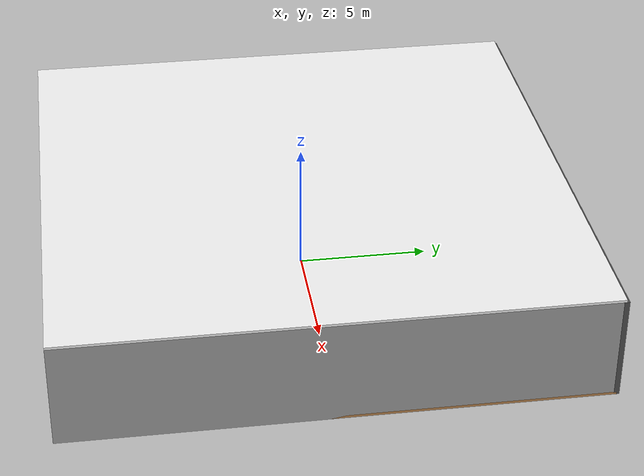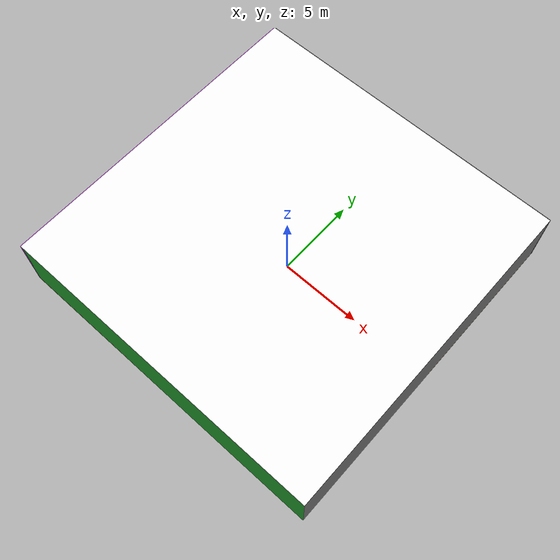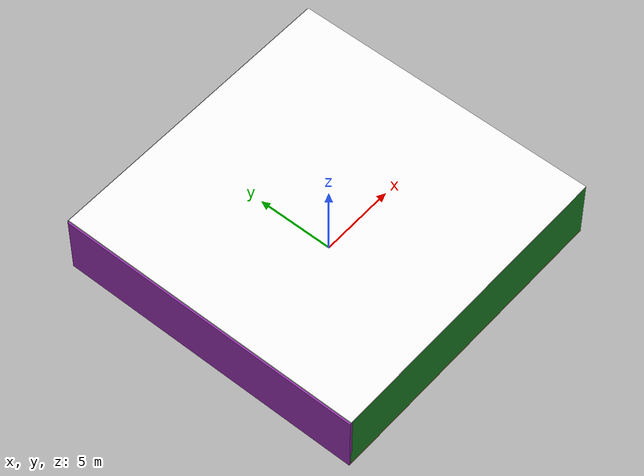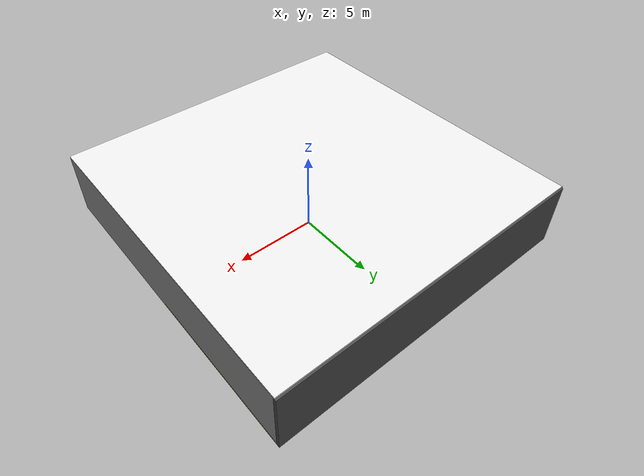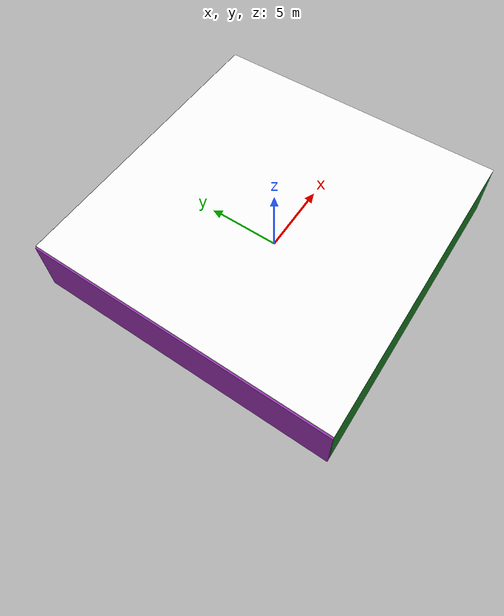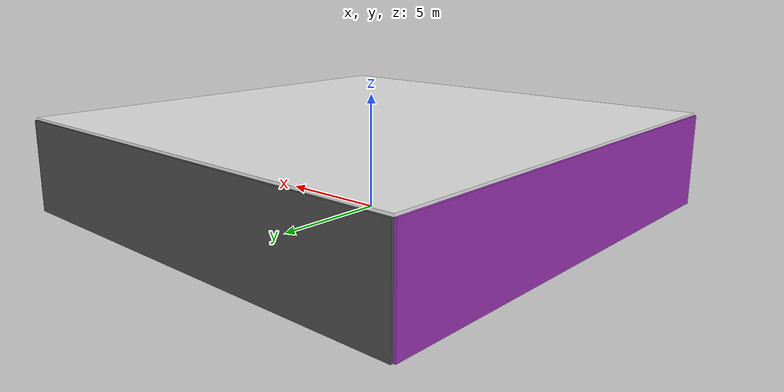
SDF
<sdf version="1.4">
 <world name="default">
  <physics type="ode">
   <max_step_size>0.001</max_step_size>
   <real_time_factor>1</real_time_factor>
   <real_time_update_rate>1000</real_time_update_rate>
   <gravity>0 0 -9.8</gravity>
  </physics>
  <scene><ambient>0.4 0.4 0.4 1</ambient><background>0.7 0.7 0.7 1</background><shadows>1</shadows></scene>
  <model name="Surrounding">
   <static>1</static>
   <link name="Ceiling">
    <collision name="Ceiling_Collision"><geometry><box><size>20 20 0.1</size></box></geometry></collision>
    <visual name="Ceiling_Visual">
     <geometry><box><size>20 20 0.1</size></box></geometry>
     <material>
      <script><uri>file://media/materials/scripts/gazebo.material</uri><name>Gazebo/WhiteGlow</name></script>
     </material>
    </visual>
    <pose>0 0 4.05 0 0 0</pose>
   </link>
   <link name="Wall_South">
    <collision name="Wall_South_Collision">
     <geometry><box><size>20 0 4</size></box></geometry>
     <pose>0 0 2 0 -0 0</pose>
    </collision>
    <visual name="Wall_South_Visual">
     <pose>0 0 2 0 -0 0</pose>
     <geometry><box><size>20 0 4</size></box></geometry>
     <material>
      <script><uri>file://media/materials/scripts/gazebo.material</uri><name>Gazebo/Green</name></script>
     </material>
    </visual>
    <velocity_decay><linear>0</linear><angular>0</angular></velocity_decay>
    <pose>0 -10 0 0 -0 0</pose>
   </link>
   <link name="Wall_East">
    <collision name="Wall_21_Collision">
     <geometry><box><size>20 0 4</size></box></geometry>
     <pose>0 0 2 0 -0 0</pose>
    </collision>
    <visual name="Wall_21_Visual">
     <pose>0 0 2 0 -0 0</pose>
     <geometry><box><size>20 0 4</size></box></geometry>
     <material>
      <script><uri>file://media/materials/scripts/gazebo.material</uri><name>Gazebo/Grey</name></script>
     </material>
    </visual>
    <velocity_decay><linear>0</linear><angular>0</angular></velocity_decay>
    <pose>10 0 0 0 -0 1.5708</pose>
   </link>
   <link name="Wall_North">
    <collision name="Wall_22_Collision">
     <geometry><box><size>20 0.2 4</size></box></geometry>
     <pose>0 0 2 0 -0 0</pose>
    </collision>
    <visual name="Wall_22_Visual">
     <pose>0 0 2 0 -0 0</pose>
     <geometry><box><size>20 0.2 4</size></box></geometry>
     <material>
      <script><uri>file://media/materials/scripts/gazebo.material</uri><name>Gazebo/Road</name></script>
     </material>
    </visual>
    <velocity_decay><linear>0</linear><angular>0</angular></velocity_decay>
    <pose>0 10 0 0 -0 0</pose>
   </link>
   <link name="Wall_West">
    <collision name="Wall_23_Collision">
     <geometry><box><size>20 0.2 4</size></box></geometry>
     <pose>0 0 2 0 -0 0</pose>
    </collision>
    <visual name="Wall_23_Visual">
     <pose>0 0 2 0 -0 0</pose>
     <geometry><box><size>20 0.2 4</size></box></geometry>
     <material>
      <script><uri>file://media/materials/scripts/gazebo.material</uri><name>Gazebo/Purple</name></script>
     </material>
    </visual>
    <velocity_decay><linear>0</linear><angular>0</angular></velocity_decay>
    <pose>-10 0 0 0 0 -1.5708</pose>
   </link>
   <link name="Ground_link">
    <collision name="collision">
     <pose>0 0 .05 0 -0 0</pose>
     <geometry><box><size>20 20 0.1</size></box></geometry>
    </collision>
    <visual name="visual">
     <pose>0 0 .05 0 -0 0</pose>
     <geometry><box><size>20 20 0.1</size></box></geometry>
     <material>
      <script><uri>file://media/materials/scripts/gazebo.material</uri><name>Gazebo/WoodFloor</name></script>
     </material>
    </visual>
   </link>
   <static>1</static>
  </model>
  <spherical_coordinates>
   <surface_model>EARTH_WGS84</surface_model>
   <latitude_deg>0</latitude_deg>
   <longitude_deg>0</longitude_deg>
   <elevation>0</elevation>
   <heading_deg>0</heading_deg>
  </spherical_coordinates>
  <light name="lightball_0" type="diffuse">
   <diffuse>0.8 0.8 0.8 1</diffuse>
   <specular>0.2 0.2 0.2 1</specular>
   <attenuation>
    <range>100</range>
    <constant>0.7</constant>
    <linear>0.01</linear>
    <quadratic>0.001</quadratic>
   </attenuation>
   <direction>-0.5 0.1 -0.9</direction>
   <pose>7.65090774384 5.15673388444 3.70046115072 0 0 0</pose>
  </light>
  <light name="lightball_1" type="diffuse">
   <diffuse>0.8 0.8 0.8 1</diffuse>
   <specular>0.2 0.2 0.2 1</specular>
   <attenuation>
    <range>100</range>
    <constant>0.7</constant>
    <linear>0.01</linear>
    <quadratic>0.001</quadratic>
   </attenuation>
   <direction>-0.5 0.1 -0.9</direction>
   <pose>2.05469376421 7.53429152741 1.55379212466 0 0 0</pose>
  </light>
  <light name="lightball_2" type="diffuse">
   <diffuse>0.8 0.8 0.8 1</diffuse>
   <specular>0.2 0.2 0.2 1</specular>
   <attenuation>
    <range>100</range>
    <constant>0.7</constant>
    <linear>0.01</linear>
    <quadratic>0.001</quadratic>
   </attenuation>
   <direction>-0.5 0.1 -0.9</direction>
   <pose>-3.17145572283 6.3059932466 1.0814548421 0 0 0</pose>
  </light>
  <light name="lightball_3" type="diffuse">
   <diffuse>0.8 0.8 0.8 1</diffuse>
   <specular>0.2 0.2 0.2 1</specular>
   <attenuation>
    <range>100</range>
    <constant>0.7</constant>
    <linear>0.01</linear>
    <quadratic>0.001</quadratic>
   </attenuation>
   <direction>-0.5 0.1 -0.9</direction>
   <pose>7.11480004225 -0.188105261289 1.56949951482 0 0 0</pose>
  </light>
  <light name="lightball_4" type="diffuse">
   <diffuse>0.8 0.8 0.8 1</diffuse>
   <specular>0.2 0.2 0.2 1</specular>
   <attenuation>
    <range>100</range>
    <constant>0.7</constant>
    <linear>0.01</linear>
    <quadratic>0.001</quadratic>
   </attenuation>
   <direction>-0.5 0.1 -0.9</direction>
   <pose>-9.49330414762 -9.53645781257 0.890553973627 0 0 0</pose>
  </light>
  <light name="lightball_5" type="diffuse">
   <diffuse>0.8 0.8 0.8 1</diffuse>
   <specular>0.2 0.2 0.2 1</specular>
   <attenuation>
    <range>100</range>
    <constant>0.7</constant>
    <linear>0.01</linear>
    <quadratic>0.001</quadratic>
   </attenuation>
   <direction>-0.5 0.1 -0.9</direction>
   <pose>-3.1057223715 2.7127856604 2.47879527944 0 0 0</pose>
  </light>
  <light name="lightball_6" type="diffuse">
   <diffuse>0.8 0.8 0.8 1</diffuse>
   <specular>0.2 0.2 0.2 1</specular>
   <attenuation>
    <range>100</range>
    <constant>0.7</constant>
    <linear>0.01</linear>
    <quadratic>0.001</quadratic>
   </attenuation>
   <direction>-0.5 0.1 -0.9</direction>
   <pose>-8.09509569498 2.25387463293 3.28459417012 0 0 0</pose>
  </light>
  <light name="lightball_7" type="diffuse">
   <diffuse>0.8 0.8 0.8 1</diffuse>
   <specular>0.2 0.2 0.2 1</specular>
   <attenuation>
    <range>100</range>
    <constant>0.7</constant>
    <linear>0.01</linear>
    <quadratic>0.001</quadratic>
   </attenuation>
   <direction>-0.5 0.1 -0.9</direction>
   <pose>4.24622809766 -4.41962617229 3.36990143722 0 0 0</pose>
  </light>
  <light name="lightball_8" type="diffuse">
   <diffuse>0.8 0.8 0.8 1</diffuse>
   <specular>0.2 0.2 0.2 1</specular>
   <attenuation>
    <range>100</range>
    <constant>0.7</constant>
    <linear>0.01</linear>
    <quadratic>0.001</quadratic>
   </attenuation>
   <direction>-0.5 0.1 -0.9</direction>
   <pose>-7.35244020795 -0.581653257146 2.46255747147 0 0 0</pose>
  </light>
  <light name="lightball_9" type="diffuse">
   <diffuse>0.8 0.8 0.8 1</diffuse>
   <specular>0.2 0.2 0.2 1</specular>
   <attenuation>
    <range>100</range>
    <constant>0.7</constant>
    <linear>0.01</linear>
    <quadratic>0.001</quadratic>
   </attenuation>
   <direction>-0.5 0.1 -0.9</direction>
   <pose>-6.48812322747 -8.25878451768 2.76478471091 0 0 0</pose>
  </light>
  <include>
   <uri>model://robocup_3Dsim_goal</uri>
   <pose>-4.15024834446 -7.85015084612 0 0 0 0.143376042458</pose>
  </include>
  <include>
   <uri>model://robocup_3Dsim_goal</uri>
   <pose>-1.43925281921 -4.345111981 0 0 0 0.802561251159</pose>
  </include>
  <include>
   <uri>model://textured_shapes</uri>
   <pose>6.84618332276 1.79526150496 0 0 0 0.549028422592</pose>
  </include>
 </world>
</sdf>

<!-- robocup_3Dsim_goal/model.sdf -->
<sdf version="1.5">
  <model name="robocup_3d_goal">
    <static>true</static>
    <link name="left_post">
      <pose>0 1.05 0.45 0 0 0</pose>
      <collision name="collision">
        <geometry>
          <cylinder>
            <radius>0.05</radius>
            <length>0.9</length>
          </cylinder>
        </geometry>
      </collision>
      <visual name="visual">
        <geometry>
          <cylinder>
            <radius>0.05</radius>
            <length>0.9</length>
          </cylinder>
        </geometry>
        <material>
          <script>
            <uri>file://media/materials/scripts/gazebo.material</uri>
            <name>Gazebo/ZincYellow</name>
          </script>
        </material>
      </visual>
    </link>
    <link name="left_support_horiz_lower">
      <pose>0.30 1.05 0.01 0 0 0</pose>
      <collision name="collision">
        <geometry>
          <box>
            <size>0.50 0.02 0.02</size>
          </box>
        </geometry>
      </collision>
      <visual name="visual">
        <geometry>
          <box>
            <size>0.50 0.02 0.02</size>
          </box>
        </geometry>
        <material>
          <script>
            <uri>file://media/materials/scripts/gazebo.material</uri>
            <name>Gazebo/White</name>
          </script>
        </material>
      </visual>
    </link>
    <link name="left_support_horiz_upper">
      <pose>0.30 1.05 0.79 0 0 0</pose>
      <collision name="collision">
        <geometry>
          <box>
            <size>0.50 0.02 0.02</size>
          </box>
        </geometry>
      </collision>
      <visual name="visual">
        <geometry>
          <box>
            <size>0.50 0.02 0.02</size>
          </box>
        </geometry>
        <material>
          <script>
            <uri>file://media/materials/scripts/gazebo.material</uri>
            <name>Gazebo/White</name>
          </script>
        </material>
      </visual>
    </link>
    <link name="left_support_vertical">
      <pose>0.56 1.05 0.4 0 1.5708 0</pose>
      <collision name="collision">
        <geometry>
          <box>
            <size>0.80 0.02 0.02</size>
          </box>
        </geometry>
      </collision>
      <visual name="visual">
        <geometry>
          <box>
            <size>0.80 0.02 0.02</size>
          </box>
        </geometry>
        <material>
          <script>
            <uri>file://media/materials/scripts/gazebo.material</uri>
            <name>Gazebo/White</name>
          </script>
        </material>
      </visual>
    </link>
    <link name="right_support_horiz_lower">
      <pose>0.30 -1.05 0.01 0 0 0</pose>
      <collision name="collision">
        <geometry>
          <box>
            <size>0.50 0.02 0.02</size>
          </box>
        </geometry>
      </collision>
      <visual name="visual">
        <geometry>
          <box>
            <size>0.50 0.02 0.02</size>
          </box>
        </geometry>
        <material>
          <script>
            <uri>file://media/materials/scripts/gazebo.material</uri>
            <name>Gazebo/White</name>
          </script>
        </material>
      </visual>
    </link>
    <link name="right_support_horiz_upper">
      <pose>0.30 -1.05 0.79 0 0 0</pose>
      <collision name="collision">
        <geometry>
          <box>
            <size>0.50 0.02 0.02</size>
          </box>
        </geometry>
      </collision>
      <visual name="visual">
        <geometry>
          <box>
            <size>0.50 0.02 0.02</size>
          </box>
        </geometry>
        <material>
          <script>
            <uri>file://media/materials/scripts/gazebo.material</uri>
            <name>Gazebo/White</name>
          </script>
        </material>
      </visual>
    </link>
    <link name="right_support_vertical">
      <pose>0.56 -1.05 0.4 0 1.5708 0</pose>
      <collision name="collision">
        <geometry>
          <box>
            <size>0.80 0.02 0.02</size>
          </box>
        </geometry>
      </collision>
      <visual name="visual">
        <geometry>
          <box>
            <size>0.80 0.02 0.02</size>
          </box>
        </geometry>
        <material>
          <script>
            <uri>file://media/materials/scripts/gazebo.material</uri>
            <name>Gazebo/White</name>
          </script>
        </material>
      </visual>
    </link>
    <link name="center_support_horiz_lower">
      <pose>0.56 0 0.01 0 1.5708 0</pose>
      <collision name="collision">
        <geometry>
          <box>
            <size>0.02 2.08 0.02</size>
          </box>
        </geometry>
      </collision>
      <visual name="visual">
        <geometry>
          <box>
            <size>0.02 2.08 0.02</size>
          </box>
        </geometry>
        <material>
          <script>
            <uri>file://media/materials/scripts/gazebo.material</uri>
            <name>Gazebo/White</name>
          </script>
        </material>
      </visual>
    </link>
    <link name="center_support_horiz_upper">
      <pose>0.56 0 0.79 0 1.5708 0</pose>
      <collision name="collision">
        <geometry>
          <box>
            <size>0.02 2.08 0.02</size>
          </box>
        </geometry>
      </collision>
      <visual name="visual">
        <geometry>
          <box>
            <size>0.02 2.08 0.02</size>
          </box>
        </geometry>
        <material>
          <script>
            <uri>file://media/materials/scripts/gazebo.material</uri>
            <name>Gazebo/White</name>
          </script>
        </material>
      </visual>
    </link>
    <link name="right_post">
      <pose>0 -1.05 0.45 0 0 0</pose>
      <collision name="collision">
        <geometry>
          <cylinder>
            <radius>0.05</radius>
            <length>0.9</length>
          </cylinder>
        </geometry>
      </collision>
      <visual name="visual">
        <geometry>
          <cylinder>
            <radius>0.05</radius>
            <length>0.9</length>
          </cylinder>
        </geometry>
        <material>
          <script>
            <uri>file://media/materials/scripts/gazebo.material</uri>
            <name>Gazebo/ZincYellow</name>
          </script>
        </material>
      </visual>
    </link>
    <link name="crossbar">
      <pose>0 0 0.85 1.57 1.57 0</pose>
      <collision name="collision">
        <geometry>
          <cylinder>
            <radius>0.05</radius>
            <length>2.0</length>
          </cylinder>
        </geometry>
      </collision>
      <visual name="visual">
        <geometry>
          <cylinder>
            <radius>0.05</radius>
            <length>2.0</length>
          </cylinder>
        </geometry>
        <material>
          <script>
            <uri>file://media/materials/scripts/gazebo.material</uri>
            <name>Gazebo/ZincYellow</name>
          </script>
        </material>
      </visual>
    </link>
    <link name="center_net">
      <pose>0.56 0 0.40 0 0 0</pose>
      <collision name="collision">
        <geometry>
          <box>
            <size>0.01 2.1 0.80</size>
          </box>
        </geometry>
      </collision>
      <visual name="visual">
        <geometry>
          <box>
            <size>0.01 2.1 0.80</size>
          </box>
        </geometry>
        <material>
          <script>
            <uri>model://../model_source/models/robocup09_spl_field/materials/scripts/</uri>
            <uri>model://../model_source/models/robocup09_spl_field/materials/textures/</uri>
            <name>RoboCup/Net</name>
          </script>
        </material>
      </visual>
    </link>
    <link name="left_net">
      <pose>0.30 1.05 0.40 0 0 0</pose>
      <collision name="collision">
        <geometry>
          <box>
            <size>0.50 0.01 0.76</size>
          </box>
        </geometry>
      </collision>
      <visual name="visual">
        <geometry>
          <box>
            <size>0.50 0.01 0.76</size>
          </box>
        </geometry>
        <material>
          <script>
            <uri>model://../model_source/models/robocup09_spl_field/materials/scripts/</uri>
            <uri>model://../model_source/models/robocup09_spl_field/materials/textures/</uri>
            <name>RoboCup/Net</name>
          </script>
        </material>
      </visual>
    </link>
    <link name="right_net">
      <pose>0.30 -1.05 0.40 0 0 0</pose>
      <collision name="collision">
        <geometry>
          <box>
            <size>0.50 0.01 0.76</size>
          </box>
        </geometry>
      </collision>
      <visual name="visual">
        <geometry>
          <box>
            <size>0.50 0.01 0.76</size>
          </box>
        </geometry>
        <material>
          <script>
            <uri>model://../model_source/models/robocup09_spl_field/materials/scripts/</uri>
            <uri>model://../model_source/models/robocup09_spl_field/materials/textures/</uri>
            <name>RoboCup/Net</name>
          </script>
        </material>
      </visual>
    </link>
  </model>
</sdf>

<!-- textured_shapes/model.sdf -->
<sdf version="1.6">
  <model name="textured_shapes">
    <pose>0 0 0.5 0 0 0</pose>
    <link name="box">
      <pose>0 -1.5 0 0 0 0</pose>
      <collision name="collision">
        <geometry>
          <box>
            <size>1 1 1</size>
          </box>
        </geometry>
      </collision>
      <visual name="visual">
        <geometry>
          <box>
            <size>1 1 1</size>
          </box>
        </geometry>
        <material>
          <script>
            <uri>model://../model_source/models/textured_shapes/materials/scripts</uri>
            <uri>model://../model_source/models/textured_shapes/materials/textures</uri>
            <name>TexturedShape/Squares</name>
          </script>
        </material>
      </visual>
    </link>
    <link name="sphere">
      <collision name="collision">
        <geometry>
          <sphere>
            <radius>0.5</radius>
          </sphere>
        </geometry>
      </collision>
      <visual name="visual">
        <geometry>
          <sphere>
            <radius>0.5</radius>
          </sphere>
        </geometry>
        <material>
          <script>
            <uri>model://../model_source/models/textured_shapes/materials/scripts</uri>
            <uri>model://../model_source/models/textured_shapes/materials/textures</uri>
            <name>TexturedShape/Squares</name>
          </script>
        </material>
      </visual>
    </link>
    <link name="cylinder">
      <pose>0 1.5 0 0 0 0</pose>
      <collision name="collision">
        <geometry>
          <cylinder>
            <radius>0.5</radius>
            <length>1</length>
          </cylinder>
        </geometry>
      </collision>
      <visual name="visual">
        <geometry>
          <cylinder>
            <radius>0.5</radius>
            <length>1</length>
          </cylinder>
        </geometry>
        <material>
          <script>
            <uri>model://../model_source/models/textured_shapes/materials/scripts</uri>
            <uri>model://../model_source/models/textured_shapes/materials/textures</uri>
            <name>TexturedShape/Squares</name>
          </script>
        </material>
      </visual>
    </link>
  </model>
</sdf>
